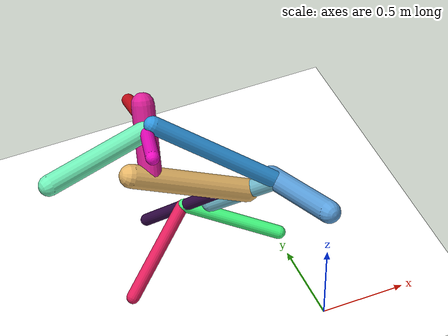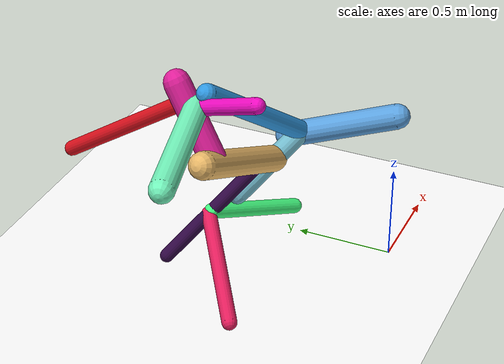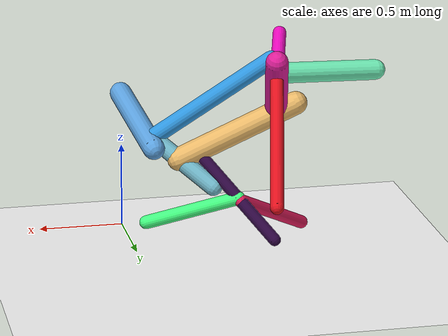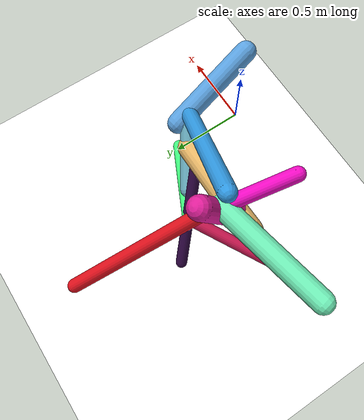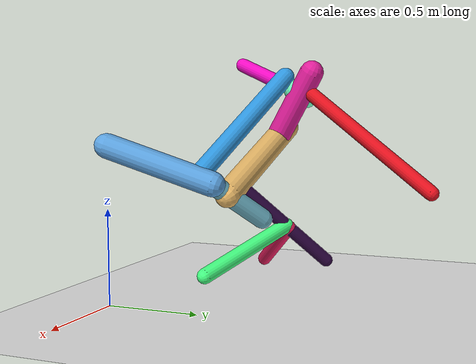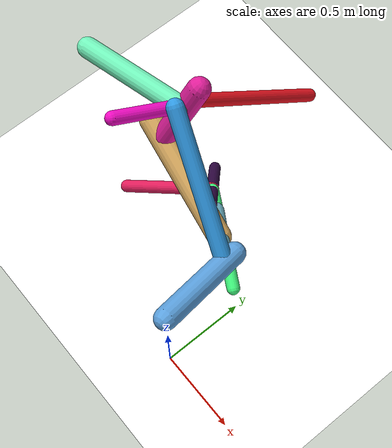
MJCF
<mujoco model="morphology">
  <option timestep="0.01"/>
  <default>
    <default class="/"/>
    <default class="0/"/>
    <default class="0/1/"/>
    <default class="0/1/2/"/>
    <default class="0/1/2/3/"/>
    <default class="0/1/2/3/4/"/>
    <default class="0/1/2/3/4/5/"/>
    <default class="0/1/2/3/4/6/"/>
    <default class="0/1/2/3/4/6/7/"/>
    <default class="0/1/2/3/8/"/>
    <default class="0/1/2/3/8/9/"/>
    <default class="0/1/2/3/8/10/"/>
  </default>
  <asset>
    <texture name="texplane" type="2d" builtin="checker" rgb1="0.10000000000000001 0.20000000000000001 0.29999999999999999" rgb2="0.20000000000000001 0.29999999999999999 0.40000000000000002" width="300" height="300"/>
    <material name="MatPlane" class="/" texture="texplane" texrepeat="20 20" specular="1" shininess="1" reflectance="0.5"/>
  </asset>
  <worldbody>
    <light name="//unnamed_light_0" class="/" directional="true" pos="0 0 1.5" dir="0 0 -1.3" cutoff="100" exponent="1" diffuse="1 1 1" specular="0.10000000000000001 0.10000000000000001 0.10000000000000001"/>
    <geom name="ground" class="/" type="plane" size="15 15 0.5" material="MatPlane" rgba="1 1 1 1"/>
    <site name="body" class="/" size="9.9999999999999995e-07 9.9999999999999995e-07 9.9999999999999995e-07" pos="0 0 0.82460585832595823"/>
    <body pos="0 0 0.82460585832595823" name="0/">
      <freejoint name="0/"/>
      <geom name="0/geom" class="0/" type="capsule" contype="1" conaffinity="1" condim="3" size="0.064227492325100582" rgba="0.35751487316039843 0.63179975600228022 0.87100097001074417 1" friction="0.59999999999999998 0.10000000000000001 0.10000000000000001" fromto="0 0 0 -0.097266126513804951 0.54400697389175323 -0.18302781645557631"/>
      <site name="0/end0" class="0/" size="0.0050000000000000001" pos="-0.097266126513804951 0.54400697389175323 -0.18302781645557631"/>
      <site name="0/attach1" class="0/" size="9.9999999999999995e-07 9.9999999999999995e-07 9.9999999999999995e-07" pos="-0.08234321413257048 0.46054350416043904 -0.15494704295106573"/>
      <body pos="-0.08234321413257048 0.46054350416043904 -0.15494704295106573" name="0/1/">
        <joint name="0/1/joint/" class="0/" type="hinge" axis="0 1 0" limited="true" range="-45.58206464484968 45.58206464484968"/>
        <geom name="0/1/geom" class="0/1/" type="capsule" contype="1" conaffinity="1" condim="3" size="0.050539141745304564" rgba="0.18880348274646752 0.59875337466508149 0.88373199271334191 1" friction="0.59999999999999998 0.10000000000000001 0.10000000000000001" fromto="0 0 0 -0.67149414484909764 0.21876684488874609 0.50537719669840819"/>
        <site name="0/1/end1" class="0/1/" size="0.0050000000000000001" pos="-0.67149414484909764 0.21876684488874609 0.50537719669840819"/>
        <site name="0/1/attach2" class="0/1/" size="9.9999999999999995e-07 9.9999999999999995e-07 9.9999999999999995e-07" pos="-0.019820532677662036 0.0064573539935792647 0.01491724882270877"/>
        <body pos="-0.019820532677662036 0.0064573539935792647 0.01491724882270877" name="0/1/2/">
          <joint name="0/1/2/joint/" class="0/1/" type="hinge" axis="-0.63412768521665208 -0.307169502791521 -0.70959775605379449" limited="true" range="-41.860710413237655 41.860710413237655"/>
          <geom name="0/1/2/geom" class="0/1/2/" type="capsule" contype="1" conaffinity="1" condim="3" size="0.05241582638477621" rgba="0.44498018599775691 0.72248930526310817 0.79499200948769855 1" friction="0.59999999999999998 0.10000000000000001 0.10000000000000001" fromto="0 0 0 -0.31596851524309971 0.21312767183024661 -0.25157034948887141"/>
          <site name="0/1/2/end2" class="0/1/2/" size="0.0050000000000000001" pos="-0.31596851524309971 0.21312767183024661 -0.25157034948887141"/>
          <site name="0/1/2/attach3" class="0/1/2/" size="9.9999999999999995e-07 9.9999999999999995e-07 9.9999999999999995e-07" pos="-0.13867575105269572 0.093539826075494922 -0.11041197294963795"/>
          <body pos="-0.13867575105269572 0.093539826075494922 -0.11041197294963795" name="0/1/2/3/">
            <joint name="0/1/2/3/joint/" class="0/1/2/" type="hinge" axis="-0.72199586178604958 -0.44724416901843655 0.52791536143858098" limited="true" range="-57.455325552106167 57.455325552106167"/>
            <geom name="0/1/2/3/geom" class="0/1/2/3/" type="capsule" contype="1" conaffinity="1" condim="3" size="0.068247217013518408" rgba="0.90743054106718968 0.71733344482647765 0.40572423983782102 1" friction="0.59999999999999998 0.10000000000000001 0.10000000000000001" fromto="0 0 0 -0.67162709534758913 0.068036080818367317 0.31744754601020264"/>
            <site name="0/1/2/3/end3" class="0/1/2/3/" size="0.0050000000000000001" pos="-0.67162709534758913 0.068036080818367317 0.31744754601020264"/>
            <site name="0/1/2/3/attach4" class="0/1/2/3/" size="9.9999999999999995e-07 9.9999999999999995e-07 9.9999999999999995e-07" pos="-0.55943153677800805 0.05667062796040695 0.26441781420236826"/>
            <body pos="-0.55943153677800805 0.05667062796040695 0.26441781420236826" name="0/1/2/3/4/">
              <joint name="0/1/2/3/4/joint/" class="0/1/2/3/" type="hinge" axis="0 -0.97779508896168177 0.20956326968821967" limited="true" range="-42.82772449806447 42.82772449806447"/>
              <geom name="0/1/2/3/4/geom" class="0/1/2/3/4/" type="capsule" contype="1" conaffinity="1" condim="3" size="0.065236520979952486" rgba="0.87677649637517607 0.11613514376374523 0.60363975310284368 1" friction="0.59999999999999998 0.10000000000000001 0.10000000000000001" fromto="0 0 0 0.049555422197753662 0.21658214458338687 0.36011963404962555"/>
              <site name="0/1/2/3/4/end4" class="0/1/2/3/4/" size="0.0050000000000000001" pos="0.049555422197753662 0.21658214458338687 0.36011963404962555"/>
              <site name="0/1/2/3/4/attach5" class="0/1/2/3/4/" size="9.9999999999999995e-07 9.9999999999999995e-07 9.9999999999999995e-07" pos="0.038321452658472289 0.1674840417503069 0.27848229105077943"/>
              <body pos="0.038321452658472289 0.1674840417503069 0.27848229105077943" name="0/1/2/3/4/5/">
                <joint name="0/1/2/3/4/5/joint/" class="0/1/2/3/4/" type="hinge" axis="-0.99311861940866697 0.060358587700898247 0.10036059323547297" limited="true" range="-62.307331325243403 62.307331325243403"/>
                <geom name="0/1/2/3/4/5/geom" class="0/1/2/3/4/5/" type="capsule" contype="1" conaffinity="1" condim="3" size="0.038883660323531508" rgba="0.88357437316678777 0.068875896582994645 0.11700287529461484 1" friction="0.59999999999999998 0.10000000000000001 0.10000000000000001" fromto="0 0 0 0.17292505499075683 0.74495074904928593 -0.53124163359797838"/>
                <site name="0/1/2/3/4/5/end5" class="0/1/2/3/4/5/" size="0.0050000000000000001" pos="0.17292505499075683 0.74495074904928593 -0.53124163359797838"/>
              </body>
              <site name="0/1/2/3/4/attach6" class="0/1/2/3/4/" size="9.9999999999999995e-07 9.9999999999999995e-07 9.9999999999999995e-07" pos="0.034298728831060186 0.14990271331099242 0.24924912607380903"/>
              <body pos="0.034298728831060186 0.14990271331099242 0.24924912607380903" name="0/1/2/3/4/6/">
                <joint name="0/1/2/3/4/6/joint/" class="0/1/2/3/4/" type="hinge" axis="-0.99311861940866697 0.060358587700898247 0.10036059323547297" limited="true" range="-45.50557713767396 45.50557713767396"/>
                <geom name="0/1/2/3/4/6/geom" class="0/1/2/3/4/6/" type="capsule" contype="1" conaffinity="1" condim="3" size="0.038877393188578094" rgba="0.93970533368628439 0.039606499596141598 0.75980346529081944 1" friction="0.59999999999999998 0.10000000000000001 0.10000000000000001" fromto="0 0 0 -0.10933420150814843 -0.39280145451354248 0.1568250059635985"/>
                <site name="0/1/2/3/4/6/end6" class="0/1/2/3/4/6/" size="0.0050000000000000001" pos="-0.10933420150814843 -0.39280145451354248 0.1568250059635985"/>
                <site name="0/1/2/3/4/6/attach7" class="0/1/2/3/4/6/" size="9.9999999999999995e-07 9.9999999999999995e-07 9.9999999999999995e-07" pos="-0.01188524677372985 -0.042699742217676841 0.017047766119461811"/>
                <body pos="-0.01188524677372985 -0.042699742217676841 0.017047766119461811" name="0/1/2/3/4/6/7/">
                  <geom name="0/1/2/3/4/6/7/geom" class="0/1/2/3/4/6/7/" type="capsule" contype="1" conaffinity="1" condim="3" size="0.059319966175356918" rgba="0.44196609687970179 0.94759024612319886 0.72699021585665746 1" friction="0.59999999999999998 0.10000000000000001 0.10000000000000001" fromto="0 0 0 -0.6169275274693844 -0.13861162470765431 -0.053549867029486831"/>
                  <site name="0/1/2/3/4/6/7/end7" class="0/1/2/3/4/6/7/" size="0.0050000000000000001" pos="-0.6169275274693844 -0.13861162470765431 -0.053549867029486831"/>
                </body>
              </body>
            </body>
            <site name="0/1/2/3/attach8" class="0/1/2/3/" size="9.9999999999999995e-07 9.9999999999999995e-07 9.9999999999999995e-07" pos="-0.10223833153818772 0.010356781963460343 0.048323403983840926"/>
            <body pos="-0.10223833153818772 0.010356781963460343 0.048323403983840926" name="0/1/2/3/8/">
              <joint name="0/1/2/3/8/joint/" class="0/1/2/3/" type="hinge" axis="-0.43520859748720597 -0.18867602501896444 -0.88033790913277321" limited="true" range="-46.592906609880394 46.592906609880394"/>
              <geom name="0/1/2/3/8/geom" class="0/1/2/3/8/" type="capsule" contype="1" conaffinity="1" condim="3" size="0.035315463694231566" rgba="0.18714121889570312 0.029407470987528606 0.2615660549868839 1" friction="0.59999999999999998 0.10000000000000001 0.10000000000000001" fromto="0 0 0 -0.37911622921186744 0.36295077881099425 -0.44660588807968776"/>
              <site name="0/1/2/3/8/end8" class="0/1/2/3/8/" size="0.0050000000000000001" pos="-0.37911622921186744 0.36295077881099425 -0.44660588807968776"/>
              <site name="0/1/2/3/8/attach9" class="0/1/2/3/8/" size="9.9999999999999995e-07 9.9999999999999995e-07 9.9999999999999995e-07" pos="-0.20262165375989435 0.19398190151080774 -0.23869203333693625"/>
              <body pos="-0.20262165375989435 0.19398190151080774 -0.23869203333693625" name="0/1/2/3/8/9/">
                <joint name="0/1/2/3/8/9/joint/" class="0/1/2/3/8/" type="hinge" axis="-0.83508137923458114 -0.34695374467368612 0.42692175994270432" limited="true" range="-67.299922576425701 67.299922576425701"/>
                <geom name="0/1/2/3/8/9/geom" class="0/1/2/3/8/9/" type="capsule" contype="1" conaffinity="1" condim="3" size="0.039588329452016145" rgba="0.26234960596371315 0.99796479365981494 0.50446761003558593 1" friction="0.59999999999999998 0.10000000000000001 0.10000000000000001" fromto="0 0 0 0.49246624774833525 -0.24626018771419178 -0.19679666337531398"/>
                <site name="0/1/2/3/8/9/end9" class="0/1/2/3/8/9/" size="0.0050000000000000001" pos="0.49246624774833525 -0.24626018771419178 -0.19679666337531398"/>
              </body>
              <site name="0/1/2/3/8/attach10" class="0/1/2/3/8/" size="9.9999999999999995e-07 9.9999999999999995e-07 9.9999999999999995e-07" pos="-0.21337358410631346 0.20427537140806587 -0.25135800495971777"/>
              <body pos="-0.21337358410631346 0.20427537140806587 -0.25135800495971777" name="0/1/2/3/8/10/">
                <joint name="0/1/2/3/8/10/joint/" class="0/1/2/3/8/" type="hinge" axis="-0.83508137923458114 -0.34695374467368612 0.42692175994270432" limited="true" range="-30.025329239663726 30.025329239663726"/>
                <geom name="0/1/2/3/8/10/geom" class="0/1/2/3/8/10/" type="capsule" contype="1" conaffinity="1" condim="3" size="0.038290617403255442" rgba="0.88094975369435347 0.11258029349595966 0.35822489813931546 1" friction="0.59999999999999998 0.10000000000000001 0.10000000000000001" fromto="0 0 0 -0.44142973819060055 -0.31543966263473344 -0.27112949094842509"/>
                <site name="0/1/2/3/8/10/end10" class="0/1/2/3/8/10/" size="0.0050000000000000001" pos="-0.44142973819060055 -0.31543966263473344 -0.27112949094842509"/>
              </body>
            </body>
          </body>
        </body>
      </body>
      <camera name="0/iso" class="0/" mode="trackcom" pos="-2.2999999999999998 -2.2999999999999998 1" xyaxes="0.45000000000000001 -0.45000000000000001 0 0.29999999999999999 0.14999999999999999 0.93999999999999995"/>
    </body>
  </worldbody>
  <actuator>
    <motor name="0/1/motor" class="0/1/" ctrllimited="true" ctrlrange="-1 1" gear="51" joint="0/1/joint/"/>
    <motor name="0/1/2/motor" class="0/1/2/" ctrllimited="true" ctrlrange="-1 1" gear="50" joint="0/1/2/joint/"/>
    <motor name="0/1/2/3/motor" class="0/1/2/3/" ctrllimited="true" ctrlrange="-1 1" gear="85" joint="0/1/2/3/joint/"/>
    <motor name="0/1/2/3/4/motor" class="0/1/2/3/4/" ctrllimited="true" ctrlrange="-1 1" gear="74" joint="0/1/2/3/4/joint/"/>
    <motor name="0/1/2/3/4/5/motor" class="0/1/2/3/4/5/" ctrllimited="true" ctrlrange="-1 1" gear="85" joint="0/1/2/3/4/5/joint/"/>
    <motor name="0/1/2/3/4/6/motor" class="0/1/2/3/4/6/" ctrllimited="true" ctrlrange="-1 1" gear="54" joint="0/1/2/3/4/6/joint/"/>
    <motor name="0/1/2/3/8/motor" class="0/1/2/3/8/" ctrllimited="true" ctrlrange="-1 1" gear="94" joint="0/1/2/3/8/joint/"/>
    <motor name="0/1/2/3/8/9/motor" class="0/1/2/3/8/9/" ctrllimited="true" ctrlrange="-1 1" gear="75" joint="0/1/2/3/8/9/joint/"/>
    <motor name="0/1/2/3/8/10/motor" class="0/1/2/3/8/10/" ctrllimited="true" ctrlrange="-1 1" gear="85" joint="0/1/2/3/8/10/joint/"/>
  </actuator>
  <sensor>
    <subtreelinvel name="velocity" body="0/"/>
  </sensor>
</mujoco>
